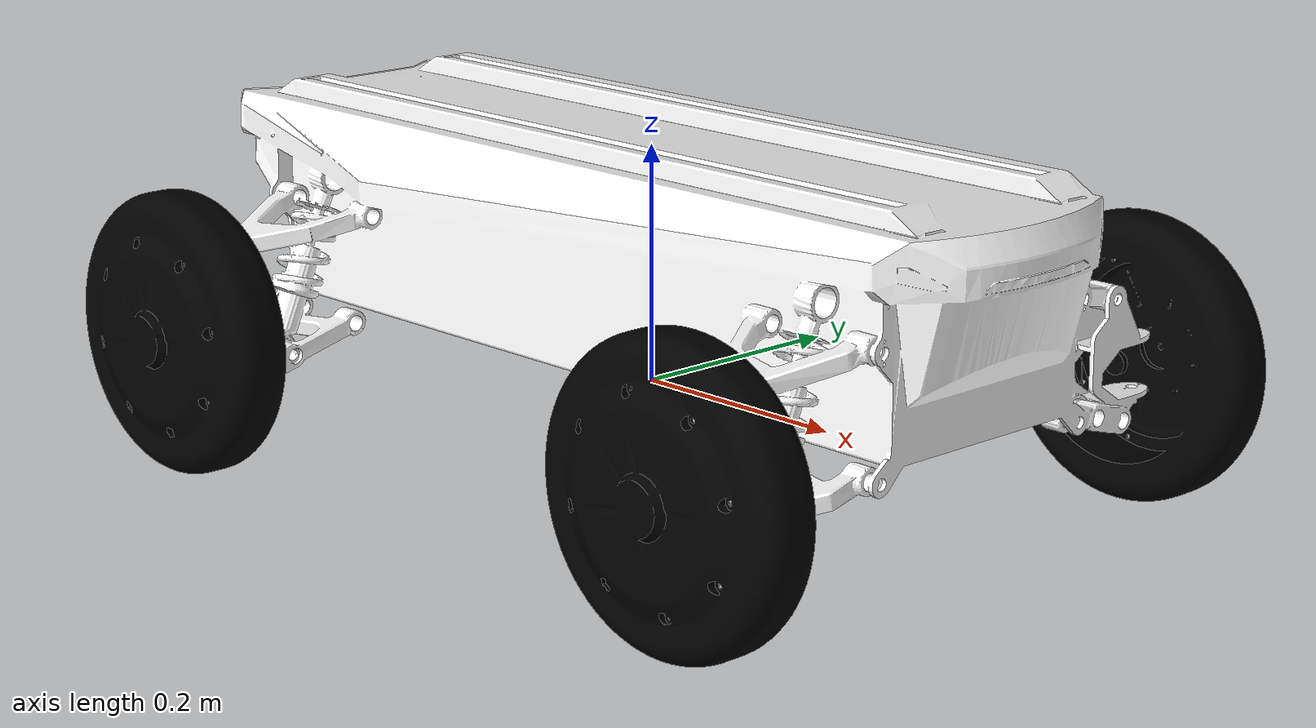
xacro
<?xml version="1.0" encoding="utf-8"?>

<robot name="mk_mini" xmlns:xacro="http://www.ros.org/wiki/xacro">

    <xacro:include filename="$(find mk-mini)/urdf/macros.xacro" />

    <link name="base_footprint">
    </link>

    <link name="base_link">
        <visual>
            <geometry>
                <mesh filename="package://mk-mini/meshes/mk-mini-chassis.STL" scale="1 1 1"/>
            </geometry>
            <origin xyz="0.42 0.26 -0.06" rpy="1.57 0 -1.57" />
            <material name="white">
                <color rgba="1 1 1 1" />
            </material>
        </visual>
        <collision>
            <geometry>
                <box size="0.92 0.74 0.05" />
            </geometry>
            <origin xyz="0.0 0.0 0.0" rpy="0.0 0.0 0.0" />
        </collision>
        <inertial>
            <origin xyz="0 0 0" />
            <mass value="10" />
            <inertia
                ixx="0.066"
                ixy="0"
                ixz="0"
                iyy="0.0735"
                iyz="0"
                izz="0.0091" />
        </inertial>
    </link>

    <joint name="base_link2base_footprint" type="fixed">
        <parent link="base_footprint" />
        <child link="base_link"/>
        <origin xyz="0 0 0.032" />
    </joint>

    <link name="left_steering_hinge">
        <visual>
            <geometry>
                <cylinder radius="0.01" length="0.005" />
            </geometry>
            <origin xyz="0 0 0" rpy="1.57 0 0" />
            <material name="black">
                <color rgba="0.0 0.0 0.0 1.0" />
            </material>
        </visual>
        <collision>
            <geometry>
                <cylinder radius="0.01" length="0.005" />
            </geometry>
            <origin xyz="0.0 0.0 0.0" rpy="1.57 0.0 0.0" />
        </collision>
        <inertial>
            <origin xyz="0 0 0" />
            <mass value="1" />
            <inertia ixx="2.7E-05" ixy="0" ixz="0" iyy="2.7E-05" iyz="0" izz="5E-05" />
        </inertial>
    </link>

    <joint name="left_steering_hinge_joint" type="revolute">
        <parent link="base_link" />
        <child link="left_steering_hinge" />
        <origin xyz="0.3 0.2335 0" />
        <axis xyz="0 0 1" />
        <limit lower="-0.52333333" upper="0.52333333" effort="2.0" velocity="100.0"/>
    </joint>

    <link name="left_front_wheel">
        <visual>
            <geometry>
                <mesh filename="package://mk-mini/meshes/MK-mini-luntai.STL" scale="1 1 1"/>
            </geometry>
            <origin xyz="-0.1243 0.06 -0.12" rpy="0 0 -1.57" />
            <material name="black">
                <color rgba="0.0 0.0 0.0 1.0" />
            </material>
        </visual>
        <collision>
            <geometry>
                <cylinder radius="0.12" length="0.05" />
            </geometry>
            <origin xyz="0.0 0.0 0.0" rpy="1.57 0.0 0.0" />
        </collision>
        <inertial>
            <origin xyz="0 0 0" />
            <mass value="2.0" />
            <inertia ixx="6.64E-04" ixy="0" ixz="0" iyy="6.64E-04" iyz="0" izz="1.02E-03" />
        </inertial>
    </link>

    <joint name="left_front_wheel_joint" type="continuous">
        <parent link="left_steering_hinge" />
        <child link="left_front_wheel" />
        <origin xyz="0 0.025 0" />
        <axis xyz="0 1 0" />
        <limit effort="10" velocity="1000" />
    </joint>

    <link name="right_steering_hinge">
        <visual>
            <geometry>
                 <cylinder radius="0.01" length="0.005" />
            </geometry>
            <origin xyz="0 0 0" rpy="1.57 0 0" />
            <material name="black">
                <color rgba="0.0 0.0 0.0 1.0" />
            </material>
        </visual>
        <collision>
            <geometry>
                <cylinder radius="0.01" length="0.005" />
            </geometry>
            <origin xyz="0.0 0.0 0.0" rpy="1.57 0.0 0.0" />
        </collision>
        <inertial>
            <origin xyz="0 0 0" />
            <mass value="1" />
            <inertia ixx="2.7E-05" ixy="0" ixz="0" iyy="2.7E-05" iyz="0" izz="5E-05" />
        </inertial>
    </link>

    <joint name="right_steering_hinge_joint" type="revolute">
        <parent link="base_link" />
        <child link="right_steering_hinge" />
        <origin xyz="0.3 -0.2335 0" />
        <axis xyz="0 0 1" />
        <limit lower="-0.52333333" upper="0.52333333" effort="2.0" velocity="100.0"/>
    </joint>

     <link name="right_front_wheel">
        <visual>
            <geometry>
                <mesh filename="package://mk-mini/meshes/MK-mini-luntai.STL" scale="1 1 1"/>
            </geometry>
            <origin xyz="0.1243 -0.06 -0.12" rpy="0 0 1.57" />
            <material name="black">
                <color rgba="0.0 0.0 0.0 1.0" />
            </material>
        </visual>
        <collision>
            <geometry>
                <cylinder radius="0.12" length="0.05" />
            </geometry>
            <origin xyz="0.0 0.0 0.0" rpy="1.57 0.0 0.0" />
        </collision>
        <inertial>
            <origin xyz="0 0 0" />
            <mass value="2.0" />
            <inertia ixx="6.64E-04" ixy="0" ixz="0" iyy="6.64E-04" iyz="0" izz="1.02E-03" />
        </inertial>
    </link>

    <joint name="right_front_wheel_joint" type="continuous">
        <parent link="right_steering_hinge" />
        <child link="right_front_wheel" />
        <origin xyz="0 -0.025 0" />
        <axis xyz="0 1 0" />
        <limit effort="10" velocity="1000" />
    </joint>

    <link name="left_rear_wheel">
        <visual>
            <geometry>
                <mesh filename="package://mk-mini/meshes/MK-mini-luntai.STL" scale="1 1 1"/>
            </geometry>
            <origin xyz="-0.1243 0.06 -0.12" rpy="0 0 -1.57" />
            <material name="black">
                <color rgba="0.0 0.0 0.0 1.0" />
            </material>
        </visual>
        <collision>
            <geometry>
                <cylinder radius="0.12" length="0.05" />
            </geometry>
            <origin xyz="0.0 0.0 0.0" rpy="1.57 0.0 0.0" />
        </collision>
        <inertial>
            <origin xyz="0 0 0" />
            <mass value="2.0" />
            <inertia ixx="6.64E-04" ixy="0" ixz="0" iyy="6.64E-04" iyz="0" izz="1.02E-03" />
        </inertial>
    </link>

    <joint name="left_rear_wheel_joint" type="continuous">
        <parent link="base_link" />
        <child link="left_rear_wheel" />
        <origin xyz="-0.3 0.2585 0" />
        <axis xyz="0 1 0" />
        <limit effort="10" velocity="1000" />
    </joint>

    <link name="right_rear_wheel">
        <visual>
            <geometry>
                <mesh filename="package://mk-mini/meshes/MK-mini-luntai.STL" scale="1 1 1"/>
            </geometry>
            <origin xyz="0.1243 -0.06 -0.12" rpy="0 0 1.57" />
            <material name="black">
                <color rgba="0.0 0.0 0.0 1.0" />
            </material>
        </visual>
        <collision>
            <geometry>
                <cylinder radius="0.12" length="0.05" />
            </geometry>
            <origin xyz="0.0 0.0 0.0" rpy="1.57 0.0 0.0" />
        </collision>
        <inertial>
            <origin xyz="0 0 0" />
            <mass value="2.0" />
            <inertia ixx="6.64E-04" ixy="0" ixz="0" iyy="6.64E-04" iyz="0" izz="1.02E-03" />
        </inertial>
    </link>

    <joint name="right_rear_wheel_joint" type="continuous">
        <parent link="base_link" />
        <child link="right_rear_wheel" />

        <origin xyz="-0.3 -0.2585 0" />
        <axis xyz="0 1 0" />
        <limit effort="10" velocity="1000" />
    </joint>

  <xacro:include filename="$(find mk-mini)/urdf/mk-mini.gazebo" />

</robot>
